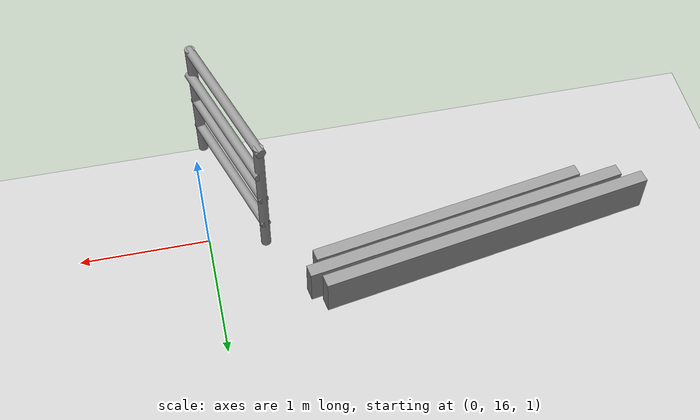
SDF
<sdf version="1.6">
 <world name="default">
  <model name="ground_plane">
   <static>1</static>
   <link name="link">
    <collision name="collision">
     <geometry><plane><normal>0 0 1</normal><size>100 100</size></plane></geometry>
     <surface><friction><ode><mu>100</mu><mu2>50</mu2></ode></friction></surface>
    </collision>
    <visual name="visual">
     <cast_shadows>0</cast_shadows>
     <geometry><plane><normal>0 0 1</normal><size>100 100</size></plane></geometry>
     <material>
      <script><uri>file://media/materials/scripts/gazebo.material</uri><name>Gazebo/Grey</name></script>
     </material>
    </visual>
   </link>
  </model>
  <model name="unit_box_0_static_clone_0_clone_clone_0_clone_0">
   <link name="link">
    <inertial>
     <mass>1</mass>
     <inertia>
      <ixx>0.166667</ixx>
      <ixy>0</ixy>
      <ixz>0</ixz>
      <iyy>0.166667</iyy>
      <iyz>0</iyz>
      <izz>0.166667</izz>
     </inertia>
    </inertial>
    <visual name="visual">
     <geometry><box><size>0.092218 2.09078 0.294956</size></box></geometry>
     <material>
      <script><name>Gazebo/Grey</name><uri>file://media/materials/scripts/gazebo.material</uri></script>
      <shader type="pixel"/>
     </material>
    </visual>
    <collision name="collision">
     <geometry><box><size>0.092218 2.09078 0.294956</size></box></geometry>
     <surface>
      <friction>
       <ode><mu>1</mu><mu2>1</mu2><fdir1>0 0 0</fdir1><slip1>0</slip1><slip2>0</slip2></ode>
       <torsional>
        <coefficient>1</coefficient>
        <patch_radius>0</patch_radius>
        <surface_radius>0</surface_radius>
        <use_patch_radius>1</use_patch_radius>
        <ode><slip>0</slip></ode>
       </torsional>
      </friction>
      <bounce><restitution_coefficient>0</restitution_coefficient><threshold>1e+06</threshold></bounce>
      <contact>
       <collide_without_contact>0</collide_without_contact>
       <collide_without_contact_bitmask>1</collide_without_contact_bitmask>
       <collide_bitmask>1</collide_bitmask>
       <ode>
        <soft_cfm>0</soft_cfm>
        <soft_erp>0.2</soft_erp>
        <kp>1e+13</kp>
        <kd>1</kd>
        <max_vel>0.01</max_vel>
        <min_depth>0</min_depth>
       </ode>
       <bullet>
        <split_impulse>1</split_impulse>
        <split_impulse_penetration_threshold>-0.01</split_impulse_penetration_threshold>
        <soft_cfm>0</soft_cfm>
        <soft_erp>0.2</soft_erp>
        <kp>1e+13</kp>
        <kd>1</kd>
       </bullet>
      </contact>
     </surface>
    </collision>
   </link>
   <static>1</static>
   <pose>-1.73864 16.5656 1.52277 0 0 -1.40144</pose>
  </model>
  <model name="unit_box_0_static_clone_0_clone_clone_0_clone_0_clone">
   <link name="link">
    <inertial>
     <mass>1</mass>
     <inertia>
      <ixx>0.166667</ixx>
      <ixy>0</ixy>
      <ixz>0</ixz>
      <iyy>0.166667</iyy>
      <iyz>0</iyz>
      <izz>0.166667</izz>
     </inertia>
    </inertial>
    <visual name="visual">
     <geometry><box><size>0.092218 2.39921 0.294956</size></box></geometry>
     <material>
      <script><name>Gazebo/Grey</name><uri>file://media/materials/scripts/gazebo.material</uri></script>
      <shader type="pixel"/>
     </material>
    </visual>
    <collision name="collision">
     <geometry><box><size>0.092218 2.39921 0.294956</size></box></geometry>
     <surface>
      <friction>
       <ode><mu>1</mu><mu2>1</mu2><fdir1>0 0 0</fdir1><slip1>0</slip1><slip2>0</slip2></ode>
       <torsional>
        <coefficient>1</coefficient>
        <patch_radius>0</patch_radius>
        <surface_radius>0</surface_radius>
        <use_patch_radius>1</use_patch_radius>
        <ode><slip>0</slip></ode>
       </torsional>
      </friction>
      <bounce><restitution_coefficient>0</restitution_coefficient><threshold>1e+06</threshold></bounce>
      <contact>
       <collide_without_contact>0</collide_without_contact>
       <collide_without_contact_bitmask>1</collide_without_contact_bitmask>
       <collide_bitmask>1</collide_bitmask>
       <ode>
        <soft_cfm>0</soft_cfm>
        <soft_erp>0.2</soft_erp>
        <kp>1e+13</kp>
        <kd>1</kd>
        <max_vel>0.01</max_vel>
        <min_depth>0</min_depth>
       </ode>
       <bullet>
        <split_impulse>1</split_impulse>
        <split_impulse_penetration_threshold>-0.01</split_impulse_penetration_threshold>
        <soft_cfm>0</soft_cfm>
        <soft_erp>0.2</soft_erp>
        <kp>1e+13</kp>
        <kd>1</kd>
       </bullet>
      </contact>
     </surface>
    </collision>
   </link>
   <static>1</static>
   <pose>-1.80179 16.7934 1.72103 0 0 -1.40144</pose>
  </model>
  <model name="unit_box_0_static_clone_0_clone_clone_0_clone_0_clone_clone">
   <link name="link">
    <inertial>
     <mass>1</mass>
     <inertia>
      <ixx>0.166667</ixx>
      <ixy>0</ixy>
      <ixz>0</ixz>
      <iyy>0.166667</iyy>
      <iyz>0</iyz>
      <izz>0.166667</izz>
     </inertia>
    </inertial>
    <visual name="visual">
     <geometry><box><size>0.092218 2.39921 0.294956</size></box></geometry>
     <material>
      <script><name>Gazebo/Grey</name><uri>file://media/materials/scripts/gazebo.material</uri></script>
      <shader type="pixel"/>
     </material>
    </visual>
    <collision name="collision">
     <geometry><box><size>0.092218 2.39921 0.294956</size></box></geometry>
     <surface>
      <friction>
       <ode><mu>1</mu><mu2>1</mu2><fdir1>0 0 0</fdir1><slip1>0</slip1><slip2>0</slip2></ode>
       <torsional>
        <coefficient>1</coefficient>
        <patch_radius>0</patch_radius>
        <surface_radius>0</surface_radius>
        <use_patch_radius>1</use_patch_radius>
        <ode><slip>0</slip></ode>
       </torsional>
      </friction>
      <bounce><restitution_coefficient>0</restitution_coefficient><threshold>1e+06</threshold></bounce>
      <contact>
       <collide_without_contact>0</collide_without_contact>
       <collide_without_contact_bitmask>1</collide_without_contact_bitmask>
       <collide_bitmask>1</collide_bitmask>
       <ode>
        <soft_cfm>0</soft_cfm>
        <soft_erp>0.2</soft_erp>
        <kp>1e+13</kp>
        <kd>1</kd>
        <max_vel>0.01</max_vel>
        <min_depth>0</min_depth>
       </ode>
       <bullet>
        <split_impulse>1</split_impulse>
        <split_impulse_penetration_threshold>-0.01</split_impulse_penetration_threshold>
        <soft_cfm>0</soft_cfm>
        <soft_erp>0.2</soft_erp>
        <kp>1e+13</kp>
        <kd>1</kd>
       </bullet>
      </contact>
     </surface>
    </collision>
   </link>
   <static>1</static>
   <pose>-1.87346 17.0202 1.91661 0 0 -1.40144</pose>
  </model>
  <model name="indoor_fence_5">
   <link name="link">
    <inertial>
     <mass>1</mass>
     <inertia><ixx>0.145833</ixx><ixy>0</ixy><ixz>0</ixz><iyy>0.145833</iyy><iyz>0</iyz><izz>0.125</izz></inertia>
    </inertial>
    <pose>0.071704 -0.128855 0 0 -0 0</pose>
    <visual name="visual">
     <geometry><cylinder><radius>0.0332942</radius><length>1</length></cylinder></geometry>
     <material>
      <script><name>Gazebo/Grey</name><uri>file://media/materials/scripts/gazebo.material</uri></script>
      <shader type="pixel"/>
     </material>
    </visual>
    <collision name="collision">
     <geometry><cylinder><radius>0.033294</radius><length>1</length></cylinder></geometry>
     <surface>
      <friction>
       <ode><mu>1</mu><mu2>1</mu2><fdir1>0 0 0</fdir1><slip1>0</slip1><slip2>0</slip2></ode>
       <torsional>
        <coefficient>1</coefficient>
        <patch_radius>0</patch_radius>
        <surface_radius>0</surface_radius>
        <use_patch_radius>1</use_patch_radius>
        <ode><slip>0</slip></ode>
       </torsional>
      </friction>
      <bounce><restitution_coefficient>0</restitution_coefficient><threshold>1e+06</threshold></bounce>
      <contact>
       <collide_without_contact>0</collide_without_contact>
       <collide_without_contact_bitmask>1</collide_without_contact_bitmask>
       <collide_bitmask>1</collide_bitmask>
       <ode>
        <soft_cfm>0</soft_cfm>
        <soft_erp>0.2</soft_erp>
        <kp>1e+13</kp>
        <kd>1</kd>
        <max_vel>0.01</max_vel>
        <min_depth>0</min_depth>
       </ode>
       <bullet>
        <split_impulse>1</split_impulse>
        <split_impulse_penetration_threshold>-0.01</split_impulse_penetration_threshold>
        <soft_cfm>0</soft_cfm>
        <soft_erp>0.2</soft_erp>
        <kp>1e+13</kp>
        <kd>1</kd>
       </bullet>
      </contact>
     </surface>
    </collision>
   </link>
   <link name="link_clone">
    <inertial>
     <mass>1</mass>
     <inertia><ixx>0.145833</ixx><ixy>0</ixy><ixz>0</ixz><iyy>0.145833</iyy><iyz>0</iyz><izz>0.125</izz></inertia>
    </inertial>
    <pose>0.369391 -1.02864 0 0 -0 0</pose>
    <visual name="visual">
     <geometry><cylinder><radius>0.0332942</radius><length>1</length></cylinder></geometry>
     <material>
      <script><name>Gazebo/Grey</name><uri>file://media/materials/scripts/gazebo.material</uri></script>
      <shader type="pixel"/>
     </material>
    </visual>
    <collision name="collision">
     <geometry><cylinder><radius>0.033294</radius><length>1</length></cylinder></geometry>
     <surface>
      <friction>
       <ode><mu>1</mu><mu2>1</mu2><fdir1>0 0 0</fdir1><slip1>0</slip1><slip2>0</slip2></ode>
       <torsional>
        <coefficient>1</coefficient>
        <patch_radius>0</patch_radius>
        <surface_radius>0</surface_radius>
        <use_patch_radius>1</use_patch_radius>
        <ode><slip>0</slip></ode>
       </torsional>
      </friction>
      <bounce><restitution_coefficient>0</restitution_coefficient><threshold>1e+06</threshold></bounce>
      <contact>
       <collide_without_contact>0</collide_without_contact>
       <collide_without_contact_bitmask>1</collide_without_contact_bitmask>
       <collide_bitmask>1</collide_bitmask>
       <ode>
        <soft_cfm>0</soft_cfm>
        <soft_erp>0.2</soft_erp>
        <kp>1e+13</kp>
        <kd>1</kd>
        <max_vel>0.01</max_vel>
        <min_depth>0</min_depth>
       </ode>
       <bullet>
        <split_impulse>1</split_impulse>
        <split_impulse_penetration_threshold>-0.01</split_impulse_penetration_threshold>
        <soft_cfm>0</soft_cfm>
        <soft_erp>0.2</soft_erp>
        <kp>1e+13</kp>
        <kd>1</kd>
       </bullet>
      </contact>
     </surface>
    </collision>
   </link>
   <link name="link_clone_0">
    <inertial>
     <mass>1</mass>
     <inertia><ixx>0.145833</ixx><ixy>0</ixy><ixz>0</ixz><iyy>0.145833</iyy><iyz>0</iyz><izz>0.125</izz></inertia>
    </inertial>
    <pose>0.220035 -0.575022 -0.262394 -1.57275 0.000646 0.319166</pose>
    <visual name="visual">
     <geometry><cylinder><radius>0.0332942</radius><length>1</length></cylinder></geometry>
     <material>
      <script><name>Gazebo/Grey</name><uri>file://media/materials/scripts/gazebo.material</uri></script>
      <shader type="pixel"/>
     </material>
    </visual>
    <collision name="collision">
     <geometry><cylinder><radius>0.033294</radius><length>1</length></cylinder></geometry>
     <surface>
      <friction>
       <ode><mu>1</mu><mu2>1</mu2><fdir1>0 0 0</fdir1><slip1>0</slip1><slip2>0</slip2></ode>
       <torsional>
        <coefficient>1</coefficient>
        <patch_radius>0</patch_radius>
        <surface_radius>0</surface_radius>
        <use_patch_radius>1</use_patch_radius>
        <ode><slip>0</slip></ode>
       </torsional>
      </friction>
      <bounce><restitution_coefficient>0</restitution_coefficient><threshold>1e+06</threshold></bounce>
      <contact>
       <collide_without_contact>0</collide_without_contact>
       <collide_without_contact_bitmask>1</collide_without_contact_bitmask>
       <collide_bitmask>1</collide_bitmask>
       <ode>
        <soft_cfm>0</soft_cfm>
        <soft_erp>0.2</soft_erp>
        <kp>1e+13</kp>
        <kd>1</kd>
        <max_vel>0.01</max_vel>
        <min_depth>0</min_depth>
       </ode>
       <bullet>
        <split_impulse>1</split_impulse>
        <split_impulse_penetration_threshold>-0.01</split_impulse_penetration_threshold>
        <soft_cfm>0</soft_cfm>
        <soft_erp>0.2</soft_erp>
        <kp>1e+13</kp>
        <kd>1</kd>
       </bullet>
      </contact>
     </surface>
    </collision>
   </link>
   <link name="link_clone_0_clone">
    <inertial>
     <mass>1</mass>
     <inertia><ixx>0.145833</ixx><ixy>0</ixy><ixz>0</ixz><iyy>0.145833</iyy><iyz>0</iyz><izz>0.125</izz></inertia>
    </inertial>
    <pose>0.220715 -0.57597 9e-06 -1.57275 0.000646 0.319166</pose>
    <visual name="visual">
     <geometry><cylinder><radius>0.0332942</radius><length>1</length></cylinder></geometry>
     <material>
      <script><name>Gazebo/Grey</name><uri>file://media/materials/scripts/gazebo.material</uri></script>
      <shader type="pixel"/>
     </material>
    </visual>
    <collision name="collision">
     <geometry><cylinder><radius>0.033294</radius><length>1</length></cylinder></geometry>
     <surface>
      <friction>
       <ode><mu>1</mu><mu2>1</mu2><fdir1>0 0 0</fdir1><slip1>0</slip1><slip2>0</slip2></ode>
       <torsional>
        <coefficient>1</coefficient>
        <patch_radius>0</patch_radius>
        <surface_radius>0</surface_radius>
        <use_patch_radius>1</use_patch_radius>
        <ode><slip>0</slip></ode>
       </torsional>
      </friction>
      <bounce><restitution_coefficient>0</restitution_coefficient><threshold>1e+06</threshold></bounce>
      <contact>
       <collide_without_contact>0</collide_without_contact>
       <collide_without_contact_bitmask>1</collide_without_contact_bitmask>
       <collide_bitmask>1</collide_bitmask>
       <ode>
        <soft_cfm>0</soft_cfm>
        <soft_erp>0.2</soft_erp>
        <kp>1e+13</kp>
        <kd>1</kd>
        <max_vel>0.01</max_vel>
        <min_depth>0</min_depth>
       </ode>
       <bullet>
        <split_impulse>1</split_impulse>
        <split_impulse_penetration_threshold>-0.01</split_impulse_penetration_threshold>
        <soft_cfm>0</soft_cfm>
        <soft_erp>0.2</soft_erp>
        <kp>1e+13</kp>
        <kd>1</kd>
       </bullet>
      </contact>
     </surface>
    </collision>
   </link>
   <link name="link_clone_0_clone_0">
    <inertial>
     <mass>1</mass>
     <inertia><ixx>0.145833</ixx><ixy>0</ixy><ixz>0</ixz><iyy>0.145833</iyy><iyz>0</iyz><izz>0.125</izz></inertia>
    </inertial>
    <pose>0.236881 -0.573626 0.245272 -1.57275 0.000646 0.319166</pose>
    <visual name="visual">
     <geometry><cylinder><radius>0.0332942</radius><length>1</length></cylinder></geometry>
     <material>
      <script><name>Gazebo/Grey</name><uri>file://media/materials/scripts/gazebo.material</uri></script>
      <shader type="pixel"/>
     </material>
    </visual>
    <collision name="collision">
     <geometry><cylinder><radius>0.033294</radius><length>1</length></cylinder></geometry>
     <surface>
      <friction>
       <ode><mu>1</mu><mu2>1</mu2><fdir1>0 0 0</fdir1><slip1>0</slip1><slip2>0</slip2></ode>
       <torsional>
        <coefficient>1</coefficient>
        <patch_radius>0</patch_radius>
        <surface_radius>0</surface_radius>
        <use_patch_radius>1</use_patch_radius>
        <ode><slip>0</slip></ode>
       </torsional>
      </friction>
      <bounce><restitution_coefficient>0</restitution_coefficient><threshold>1e+06</threshold></bounce>
      <contact>
       <collide_without_contact>0</collide_without_contact>
       <collide_without_contact_bitmask>1</collide_without_contact_bitmask>
       <collide_bitmask>1</collide_bitmask>
       <ode>
        <soft_cfm>0</soft_cfm>
        <soft_erp>0.2</soft_erp>
        <kp>1e+13</kp>
        <kd>1</kd>
        <max_vel>0.01</max_vel>
        <min_depth>0</min_depth>
       </ode>
       <bullet>
        <split_impulse>1</split_impulse>
        <split_impulse_penetration_threshold>-0.01</split_impulse_penetration_threshold>
        <soft_cfm>0</soft_cfm>
        <soft_erp>0.2</soft_erp>
        <kp>1e+13</kp>
        <kd>1</kd>
       </bullet>
      </contact>
     </surface>
    </collision>
   </link>
   <link name="link_clone_0_clone_1">
    <inertial>
     <mass>1</mass>
     <inertia><ixx>0.145833</ixx><ixy>0</ixy><ixz>0</ixz><iyy>0.145833</iyy><iyz>0</iyz><izz>0.125</izz></inertia>
    </inertial>
    <pose>0.215457 -0.570915 0.471531 -1.57275 0.000646 0.319166</pose>
    <visual name="visual">
     <geometry><cylinder><radius>0.0332942</radius><length>1</length></cylinder></geometry>
     <material>
      <script><name>Gazebo/Grey</name><uri>file://media/materials/scripts/gazebo.material</uri></script>
      <shader type="pixel"/>
     </material>
    </visual>
    <collision name="collision">
     <geometry><cylinder><radius>0.033294</radius><length>1</length></cylinder></geometry>
     <surface>
      <friction>
       <ode><mu>1</mu><mu2>1</mu2><fdir1>0 0 0</fdir1><slip1>0</slip1><slip2>0</slip2></ode>
       <torsional>
        <coefficient>1</coefficient>
        <patch_radius>0</patch_radius>
        <surface_radius>0</surface_radius>
        <use_patch_radius>1</use_patch_radius>
        <ode><slip>0</slip></ode>
       </torsional>
      </friction>
      <bounce><restitution_coefficient>0</restitution_coefficient><threshold>1e+06</threshold></bounce>
      <contact>
       <collide_without_contact>0</collide_without_contact>
       <collide_without_contact_bitmask>1</collide_without_contact_bitmask>
       <collide_bitmask>1</collide_bitmask>
       <ode>
        <soft_cfm>0</soft_cfm>
        <soft_erp>0.2</soft_erp>
        <kp>1e+13</kp>
        <kd>1</kd>
        <max_vel>0.01</max_vel>
        <min_depth>0</min_depth>
       </ode>
       <bullet>
        <split_impulse>1</split_impulse>
        <split_impulse_penetration_threshold>-0.01</split_impulse_penetration_threshold>
        <soft_cfm>0</soft_cfm>
        <soft_erp>0.2</soft_erp>
        <kp>1e+13</kp>
        <kd>1</kd>
       </bullet>
      </contact>
     </surface>
    </collision>
   </link>
   <static>1</static>
   <pose>-0.436134 16.9583 2.56606 0 -0 0</pose>
  </model>
 </world>
</sdf>
